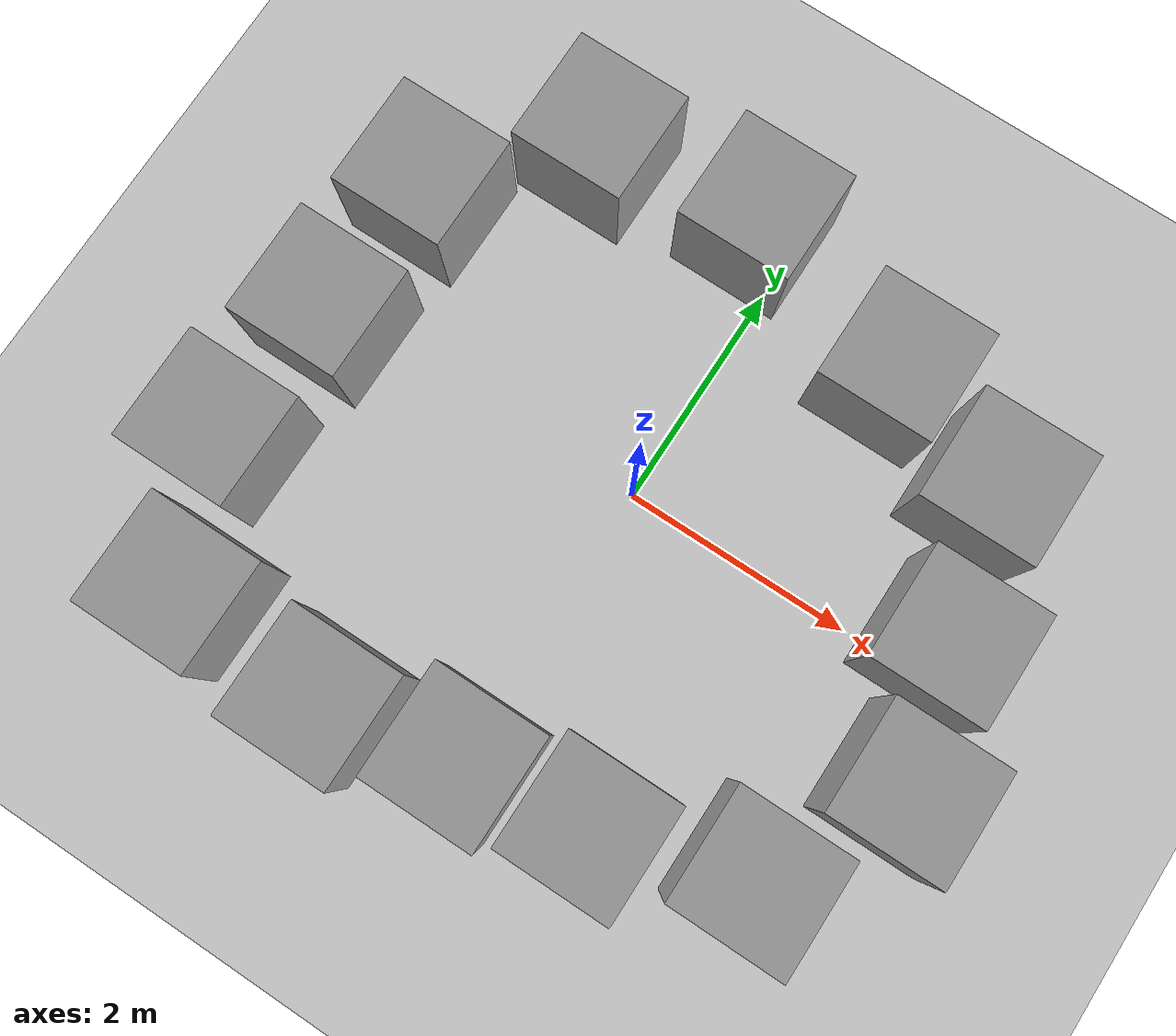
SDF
<sdf version="1.7">
 <world name="default">
  <light name="sun" type="directional">
   <pose>0 0 10 0 -0 0</pose>
   <diffuse>0.8 0.8 0.8 1</diffuse>
   <specular>0.2 0.2 0.2 1</specular>
   <attenuation>
    <range>1000</range>
    <constant>0.9</constant>
    <linear>0.01</linear>
    <quadratic>0.001</quadratic>
   </attenuation>
   <direction>-0.5 0.1 -0.9</direction>
   <spot><inner_angle>0</inner_angle><outer_angle>0</outer_angle><falloff>0</falloff></spot>
  </light>
  <model name="ground_plane">
   <static>1</static>
   <link name="link">
    <collision name="collision">
     <geometry><plane><normal>0 0 1</normal><size>100 100</size></plane></geometry>
     <surface>
      <contact><collide_bitmask>65535</collide_bitmask></contact>
      <friction><ode><mu>100</mu><mu2>50</mu2></ode></friction>
     </surface>
    </collision>
    <visual name="visual">
     <cast_shadows>0</cast_shadows>
     <geometry><plane><normal>0 0 1</normal><size>100 100</size></plane></geometry>
     <material>
      <script><uri>file://media/materials/scripts/gazebo.material</uri><name>Gazebo/Grey</name></script>
     </material>
    </visual>
   </link>
  </model>
  <gravity>0 0 -9.8</gravity>
  <magnetic_field>6e-06 2.3e-05 -4.2e-05</magnetic_field>
  <atmosphere type="adiabatic"/>
  <physics type="ode">
   <max_step_size>0.001</max_step_size>
   <real_time_factor>1</real_time_factor>
   <real_time_update_rate>1000</real_time_update_rate>
  </physics>
  <scene><ambient>0.4 0.4 0.4 1</ambient><background>0.7 0.7 0.7 1</background><shadows>1</shadows></scene>
  <spherical_coordinates>
   <surface_model>EARTH_WGS84</surface_model>
   <latitude_deg>0</latitude_deg>
   <longitude_deg>0</longitude_deg>
   <elevation>0</elevation>
   <heading_deg>0</heading_deg>
  </spherical_coordinates>
  <model name="unit_box">
   <pose>-2.80359 -0.139598 0.499995 -1e-05 -0 -0</pose>
   <link name="link">
    <inertial>
     <mass>1</mass>
     <inertia>
      <ixx>0.166667</ixx>
      <ixy>0</ixy>
      <ixz>0</ixz>
      <iyy>0.166667</iyy>
      <iyz>0</iyz>
      <izz>0.166667</izz>
     </inertia>
    </inertial>
    <collision name="collision"><geometry><box><size>1 1 1</size></box></geometry></collision>
    <visual name="visual">
     <geometry><box><size>1 1 1</size></box></geometry>
     <material>
      <script><name>Gazebo/Grey</name><uri>file://media/materials/scripts/gazebo.material</uri></script>
     </material>
    </visual>
   </link>
  </model>
  <model name="unit_box_0">
   <pose>-2.73231 1.15091 0.499995 0 1e-05 0</pose>
   <link name="link">
    <inertial>
     <mass>1</mass>
     <inertia>
      <ixx>0.166667</ixx>
      <ixy>0</ixy>
      <ixz>0</ixz>
      <iyy>0.166667</iyy>
      <iyz>0</iyz>
      <izz>0.166667</izz>
     </inertia>
    </inertial>
    <collision name="collision"><geometry><box><size>1 1 1</size></box></geometry></collision>
    <visual name="visual">
     <geometry><box><size>1 1 1</size></box></geometry>
     <material>
      <script><name>Gazebo/Grey</name><uri>file://media/materials/scripts/gazebo.material</uri></script>
     </material>
    </visual>
   </link>
  </model>
  <model name="unit_box_1">
   <pose>-1.77581 2.22561 0.499995 -1e-05 -0 -0</pose>
   <link name="link">
    <inertial>
     <mass>1</mass>
     <inertia>
      <ixx>0.166667</ixx>
      <ixy>0</ixy>
      <ixz>0</ixz>
      <iyy>0.166667</iyy>
      <iyz>0</iyz>
      <izz>0.166667</izz>
     </inertia>
    </inertial>
    <collision name="collision"><geometry><box><size>1 1 1</size></box></geometry></collision>
    <visual name="visual">
     <geometry><box><size>1 1 1</size></box></geometry>
     <material>
      <script><name>Gazebo/Grey</name><uri>file://media/materials/scripts/gazebo.material</uri></script>
     </material>
    </visual>
   </link>
  </model>
  <model name="unit_box_2">
   <pose>-0.344303 2.38576 0.499995 0 1e-05 0</pose>
   <link name="link">
    <inertial>
     <mass>1</mass>
     <inertia>
      <ixx>0.166667</ixx>
      <ixy>0</ixy>
      <ixz>0</ixz>
      <iyy>0.166667</iyy>
      <iyz>0</iyz>
      <izz>0.166667</izz>
     </inertia>
    </inertial>
    <collision name="collision"><geometry><box><size>1 1 1</size></box></geometry></collision>
    <visual name="visual">
     <geometry><box><size>1 1 1</size></box></geometry>
     <material>
      <script><name>Gazebo/Grey</name><uri>file://media/materials/scripts/gazebo.material</uri></script>
     </material>
    </visual>
   </link>
  </model>
  <model name="unit_box_3">
   <pose>1.21973 1.89413 0.499995 -1e-05 -0 -0</pose>
   <link name="link">
    <inertial>
     <mass>1</mass>
     <inertia>
      <ixx>0.166667</ixx>
      <ixy>0</ixy>
      <ixz>0</ixz>
      <iyy>0.166667</iyy>
      <iyz>0</iyz>
      <izz>0.166667</izz>
     </inertia>
    </inertial>
    <collision name="collision"><geometry><box><size>1 1 1</size></box></geometry></collision>
    <visual name="visual">
     <geometry><box><size>1 1 1</size></box></geometry>
     <material>
      <script><name>Gazebo/Grey</name><uri>file://media/materials/scripts/gazebo.material</uri></script>
     </material>
    </visual>
   </link>
  </model>
  <model name="unit_box_4">
   <pose>2.63709 0.286689 0.499995 0 1e-05 0</pose>
   <link name="link">
    <inertial>
     <mass>1</mass>
     <inertia>
      <ixx>0.166667</ixx>
      <ixy>0</ixy>
      <ixz>0</ixz>
      <iyy>0.166667</iyy>
      <iyz>0</iyz>
      <izz>0.166667</izz>
     </inertia>
    </inertial>
    <collision name="collision"><geometry><box><size>1 1 1</size></box></geometry></collision>
    <visual name="visual">
     <geometry><box><size>1 1 1</size></box></geometry>
     <material>
      <script><name>Gazebo/Grey</name><uri>file://media/materials/scripts/gazebo.material</uri></script>
     </material>
    </visual>
   </link>
  </model>
  <model name="unit_box_5">
   <pose>2.33809 1.50554 0.499995 -1e-05 -0 -0</pose>
   <link name="link">
    <inertial>
     <mass>1</mass>
     <inertia>
      <ixx>0.166667</ixx>
      <ixy>0</ixy>
      <ixz>0</ixz>
      <iyy>0.166667</iyy>
      <iyz>0</iyz>
      <izz>0.166667</izz>
     </inertia>
    </inertial>
    <collision name="collision"><geometry><box><size>1 1 1</size></box></geometry></collision>
    <visual name="visual">
     <geometry><box><size>1 1 1</size></box></geometry>
     <material>
      <script><name>Gazebo/Grey</name><uri>file://media/materials/scripts/gazebo.material</uri></script>
     </material>
    </visual>
   </link>
  </model>
  <model name="unit_box_6">
   <pose>2.95668 -0.836826 0.499995 0 1e-05 0</pose>
   <link name="link">
    <inertial>
     <mass>1</mass>
     <inertia>
      <ixx>0.166667</ixx>
      <ixy>0</ixy>
      <ixz>0</ixz>
      <iyy>0.166667</iyy>
      <iyz>0</iyz>
      <izz>0.166667</izz>
     </inertia>
    </inertial>
    <collision name="collision"><geometry><box><size>1 1 1</size></box></geometry></collision>
    <visual name="visual">
     <geometry><box><size>1 1 1</size></box></geometry>
     <material>
      <script><name>Gazebo/Grey</name><uri>file://media/materials/scripts/gazebo.material</uri></script>
     </material>
    </visual>
   </link>
  </model>
  <model name="unit_box_7">
   <pose>2.34215 -1.98113 0.499995 -1e-05 -0 -0</pose>
   <link name="link">
    <inertial>
     <mass>1</mass>
     <inertia>
      <ixx>0.166667</ixx>
      <ixy>0</ixy>
      <ixz>0</ixz>
      <iyy>0.166667</iyy>
      <iyz>0</iyz>
      <izz>0.166667</izz>
     </inertia>
    </inertial>
    <collision name="collision"><geometry><box><size>1 1 1</size></box></geometry></collision>
    <visual name="visual">
     <geometry><box><size>1 1 1</size></box></geometry>
     <material>
      <script><name>Gazebo/Grey</name><uri>file://media/materials/scripts/gazebo.material</uri></script>
     </material>
    </visual>
   </link>
  </model>
  <model name="unit_box_8">
   <pose>1.11189 -2.33679 0.499995 0 1e-05 0</pose>
   <link name="link">
    <inertial>
     <mass>1</mass>
     <inertia>
      <ixx>0.166667</ixx>
      <ixy>0</ixy>
      <ixz>0</ixz>
      <iyy>0.166667</iyy>
      <iyz>0</iyz>
      <izz>0.166667</izz>
     </inertia>
    </inertial>
    <collision name="collision"><geometry><box><size>1 1 1</size></box></geometry></collision>
    <visual name="visual">
     <geometry><box><size>1 1 1</size></box></geometry>
     <material>
      <script><name>Gazebo/Grey</name><uri>file://media/materials/scripts/gazebo.material</uri></script>
     </material>
    </visual>
   </link>
  </model>
  <model name="unit_box_9">
   <pose>0.030534 -2.45363 0.499995 -1e-05 -0 -0</pose>
   <link name="link">
    <inertial>
     <mass>1</mass>
     <inertia>
      <ixx>0.166667</ixx>
      <ixy>0</ixy>
      <ixz>0</ixz>
      <iyy>0.166667</iyy>
      <iyz>0</iyz>
      <izz>0.166667</izz>
     </inertia>
    </inertial>
    <collision name="collision"><geometry><box><size>1 1 1</size></box></geometry></collision>
    <visual name="visual">
     <geometry><box><size>1 1 1</size></box></geometry>
     <material>
      <script><name>Gazebo/Grey</name><uri>file://media/materials/scripts/gazebo.material</uri></script>
     </material>
    </visual>
   </link>
  </model>
  <model name="unit_box_10">
   <pose>-1.09159 -2.67176 0.499995 0 1e-05 0</pose>
   <link name="link">
    <inertial>
     <mass>1</mass>
     <inertia>
      <ixx>0.166667</ixx>
      <ixy>0</ixy>
      <ixz>0</ixz>
      <iyy>0.166667</iyy>
      <iyz>0</iyz>
      <izz>0.166667</izz>
     </inertia>
    </inertial>
    <collision name="collision"><geometry><box><size>1 1 1</size></box></geometry></collision>
    <visual name="visual">
     <geometry><box><size>1 1 1</size></box></geometry>
     <material>
      <script><name>Gazebo/Grey</name><uri>file://media/materials/scripts/gazebo.material</uri></script>
     </material>
    </visual>
   </link>
  </model>
  <model name="unit_box_11">
   <pose>-2.92779 -1.40298 0.499995 -1e-05 -0 0</pose>
   <link name="link">
    <inertial>
     <mass>1</mass>
     <inertia>
      <ixx>0.166667</ixx>
      <ixy>0</ixy>
      <ixz>0</ixz>
      <iyy>0.166667</iyy>
      <iyz>0</iyz>
      <izz>0.166667</izz>
     </inertia>
    </inertial>
    <collision name="collision"><geometry><box><size>1 1 1</size></box></geometry></collision>
    <visual name="visual">
     <geometry><box><size>1 1 1</size></box></geometry>
     <material>
      <script><name>Gazebo/Grey</name><uri>file://media/materials/scripts/gazebo.material</uri></script>
     </material>
    </visual>
   </link>
  </model>
  <model name="unit_box_12">
   <pose>-2.43631 -2.56422 0.5 0 -0 0</pose>
   <link name="link">
    <inertial>
     <mass>1</mass>
     <inertia>
      <ixx>0.166667</ixx>
      <ixy>0</ixy>
      <ixz>0</ixz>
      <iyy>0.166667</iyy>
      <iyz>0</iyz>
      <izz>0.166667</izz>
     </inertia>
    </inertial>
    <collision name="collision"><geometry><box><size>1 1 1</size></box></geometry></collision>
    <visual name="visual">
     <geometry><box><size>1 1 1</size></box></geometry>
     <material>
      <script><name>Gazebo/Grey</name><uri>file://media/materials/scripts/gazebo.material</uri></script>
     </material>
    </visual>
   </link>
  </model>
 </world>
</sdf>
